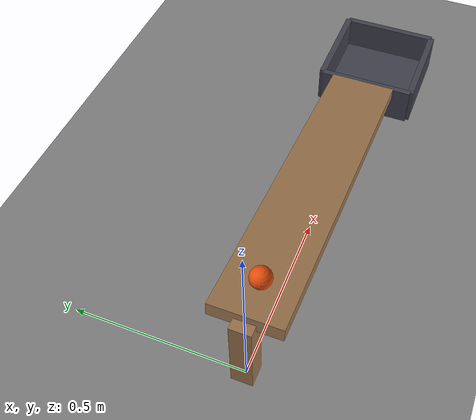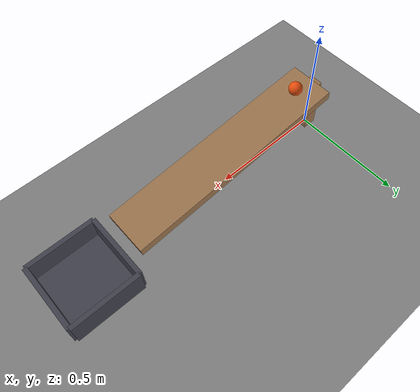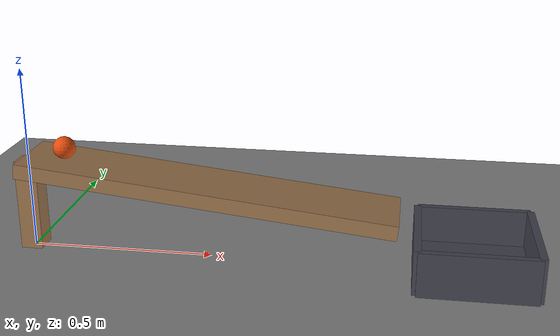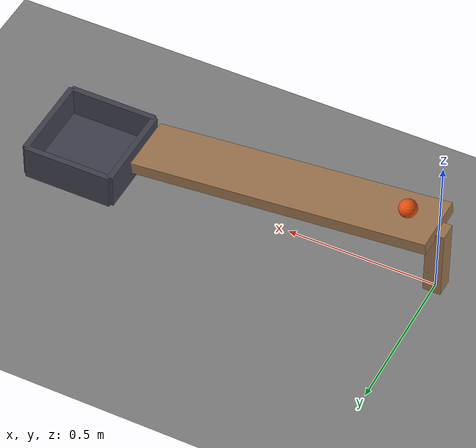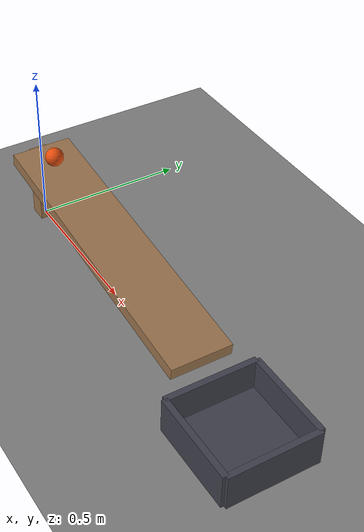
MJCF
<mujoco model="ball_rolls_down_a_ramp_into_a_cup">
  <compiler angle="radian"/>
  <option timestep="0.002"/>
  <worldbody>
    <geom name="floor" type="plane" size="8 8 0.1" friction="0.8 0.005 0.002"/>
    <body name="ramp">
      <geom name="ramp_deck" type="box" pos="0.5 0 0.195" size="0.503016 0.1 0.02" euler="0 0.10956 0" friction="0.9 0.002 0.0005" rgba="0.6 0.45 0.3 1"/>
      <geom name="ramp_leg" type="box" pos="0 0 0.125" size="0.03 0.03 0.125" friction="0.9 0.002 0.0005" rgba="0.6 0.45 0.3 1"/>
    </body>
    <body name="cup">
      <geom name="cup_base" type="box" pos="1.2 0 0.01" size="0.15 0.15 0.01" friction="1 0.02 0.02" solref="0.01 1" rgba="0.25 0.25 0.3 1"/>
      <geom name="cup_near_wall" type="box" pos="1.05 0 0.06" size="0.01 0.15 0.06" friction="1 0.02 0.02" solref="0.01 1" rgba="0.25 0.25 0.3 1"/>
      <geom name="cup_far_wall" type="box" pos="1.35 0 0.06" size="0.01 0.15 0.06" friction="1 0.02 0.02" solref="0.01 1" rgba="0.25 0.25 0.3 1"/>
      <geom name="cup_left_wall" type="box" pos="1.2 0.15 0.06" size="0.15 0.01 0.06" friction="1 0.02 0.02" solref="0.01 1" rgba="0.25 0.25 0.3 1"/>
      <geom name="cup_right_wall" type="box" pos="1.2 -0.15 0.06" size="0.15 0.01 0.06" friction="1 0.02 0.02" solref="0.01 1" rgba="0.25 0.25 0.3 1"/>
    </body>
    <body name="ball" pos="0.104867 0 0.288766">
      <freejoint/>
      <geom name="ball" type="sphere" pos="0 0 0" size="0.03" mass="0.1" condim="6" friction="0.9 0.002 0.0005" solref="0.01 1" rgba="0.9 0.3 0.05 1"/>
    </body>
  </worldbody>
  <keyframe>
    <key name="start" qpos="0.104867 0 0.288766 1 0 0 0" qvel="0 0 0 0 0 0"/>
  </keyframe>
</mujoco>
